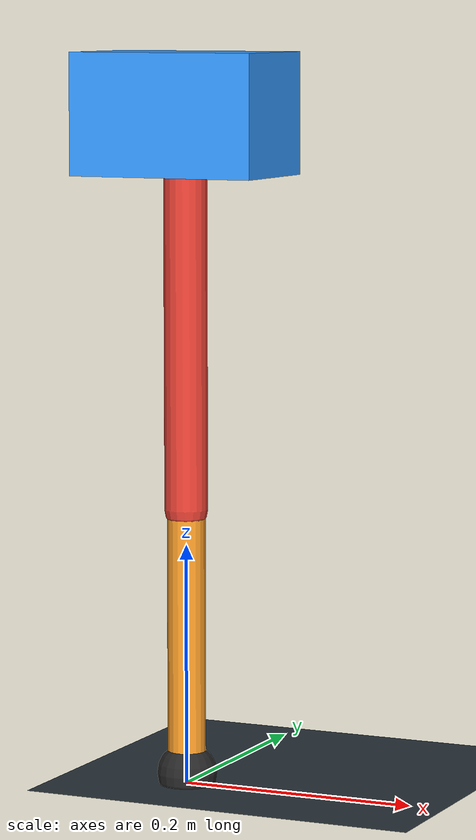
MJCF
<mujoco model="single_axis_two_bar">
  <compiler angle="radian" inertiafromgeom="true"/>
  <option timestep="0.001" integrator="implicitfast" gravity="0 0 -9.81"/>
  <default>
    <joint damping="0.08"/>
    <geom friction="1.2 0.01 0.0001" condim="3"/>
  </default>
  <worldbody>
    <geom name="floor" type="plane" size="5 5 0.1" rgba="0.18 0.22 0.25 1"/>
    <body name="carriage" pos="0 0 0.5551997180624977">
      <joint name="pole_slide" type="slide" axis="0 0 1"/>
      <geom name="payload" type="box" size="0.08 0.05 0.05" mass="2.3784160244272377" rgba="0.2 0.6 1 1"/>
      <body name="thigh" pos="0 0 0">
        <joint name="hip" type="hinge" axis="0 1 0"/>
        <geom name="thigh_link" type="capsule" fromto="0 0 0 0 0 -0.325004466593567" size="0.018" mass="0.23156997700304097" rgba="0.9 0.25 0.2 1"/>
        <body name="shank" pos="0 0 -0.325004466593567">
          <joint name="knee" type="hinge" axis="0 1 0"/>
          <geom name="shank_link" type="capsule" fromto="0 0 0 0 0 -0.22159318089354407" size="0.016" mass="0.15788806948219458" rgba="0.95 0.6 0.15 1"/>
          <geom name="foot" type="sphere" pos="0 0 -0.22159318089354407" size="0.025" mass="0.03" rgba="0.15 0.15 0.15 1"/>
          <site name="toe" pos="0 0 -0.22159318089354407" size="0.008"/>
        </body>
      </body>
    </body>
  </worldbody>
  <actuator>
    <motor name="hip_motor" joint="hip" ctrlrange="-34.44811672940424 34.44811672940424"/>
    <motor name="knee_motor" joint="knee" ctrlrange="-93.85196945921912 93.85196945921912"/>
  </actuator>
</mujoco>
